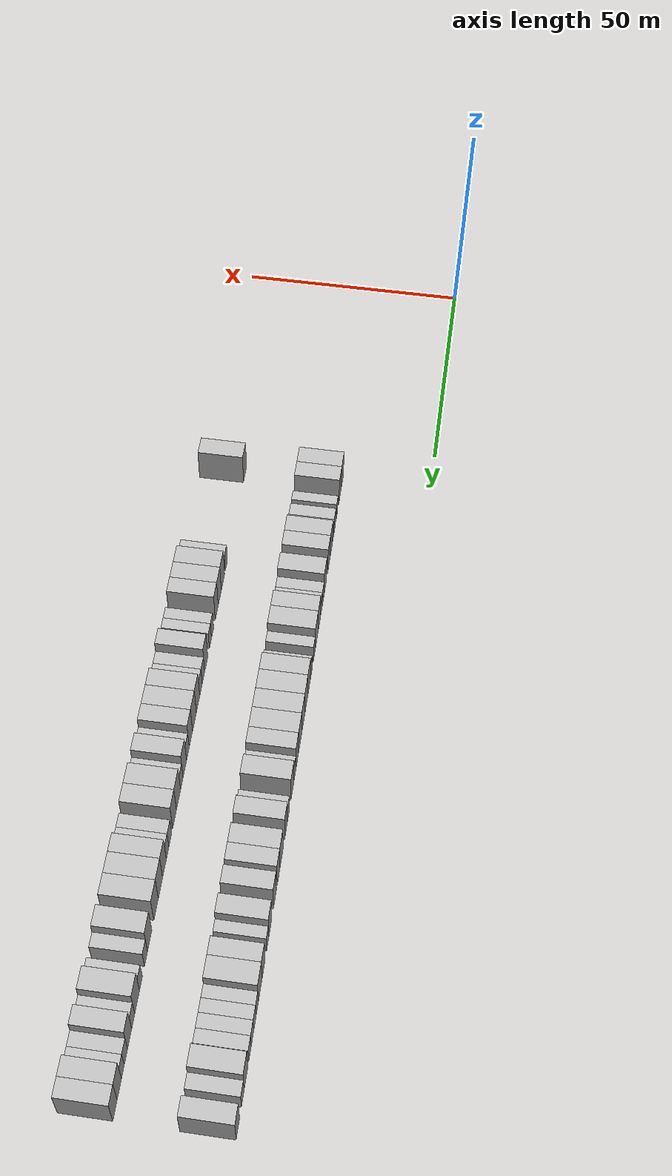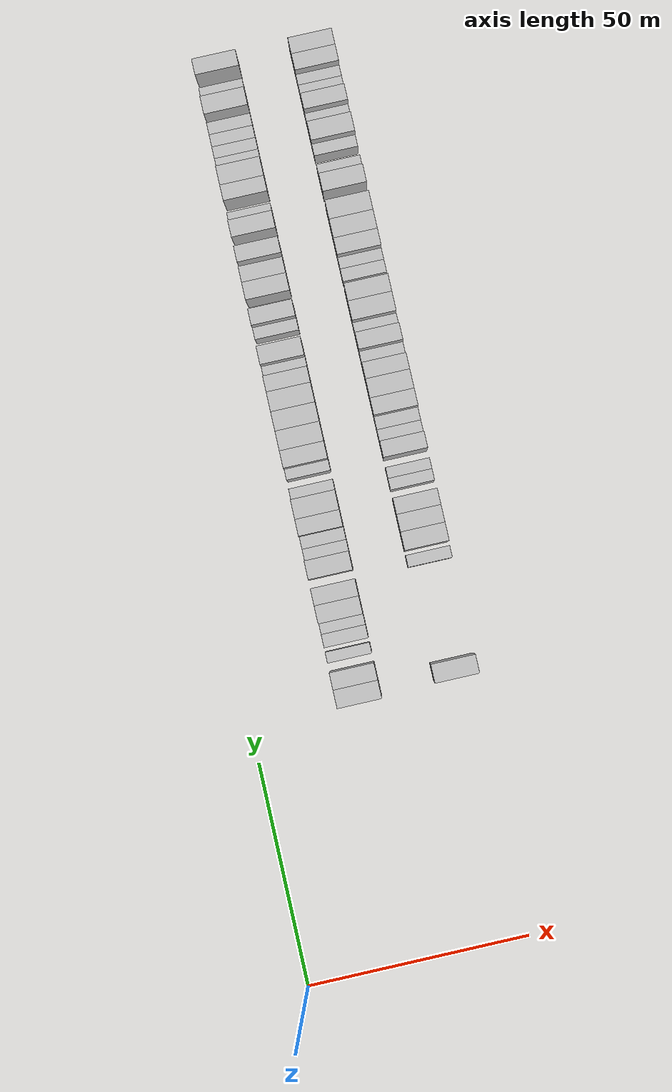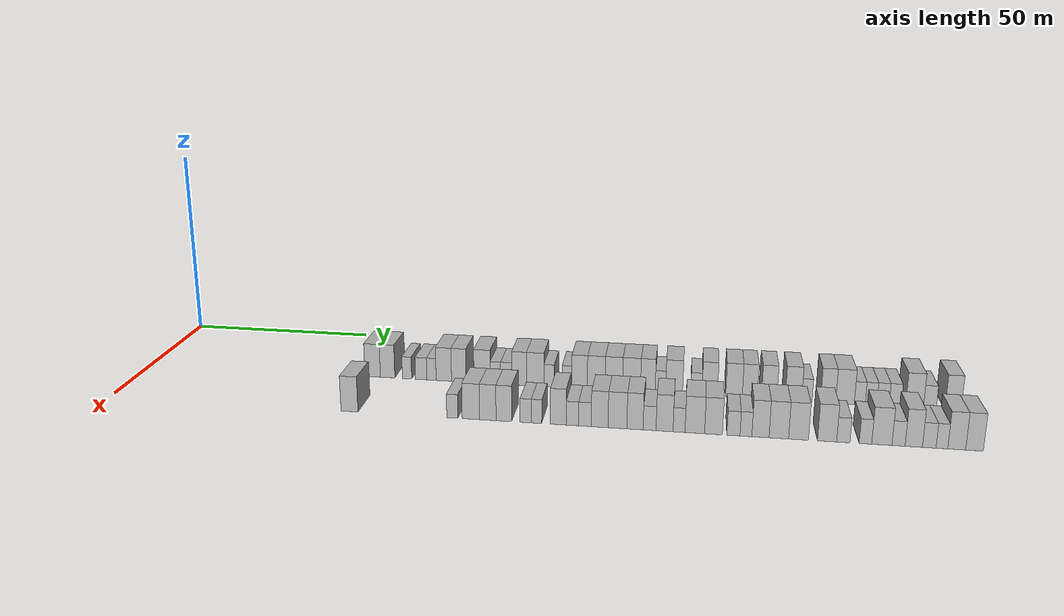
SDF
<sdf version="1.6">
 <world name="default">
  <model name="building_69">
   <static>1</static>
   <pose>25.0000 60.6281 0 0.000000 0.000000 0.000000</pose>
   <link name="link">
    <pose>0 0 4.50 0 0 0</pose>
    <collision name="collision"><geometry><box><size>10.0000 4.1049 9.0000</size></box></geometry></collision>
    <visual name="visual">
     <cast_shadows>0</cast_shadows>
     <geometry><box><size>10.0000 4.1049 9.0000</size></box></geometry>
     <material>
      <script>
       <uri>model://HANNAS_wall/materials/scripts</uri>
       <uri>model://HANNAS_wall/materials/textures</uri>
       <name>vrc/HANNAS_wall</name>
      </script>
     </material>
    </visual>
   </link>
  </model>
  <model name="building_70">
   <static>1</static>
   <pose>25.0000 64.6095 0 0.000000 0.000000 0.000000</pose>
   <link name="link">
    <pose>0 0 4.50 0 0 0</pose>
    <collision name="collision"><geometry><box><size>10.0000 3.8579 9.0000</size></box></geometry></collision>
    <visual name="visual">
     <cast_shadows>0</cast_shadows>
     <geometry><box><size>10.0000 3.8579 9.0000</size></box></geometry>
     <material>
      <script>
       <uri>model://HANNAS_wall/materials/scripts</uri>
       <uri>model://HANNAS_wall/materials/textures</uri>
       <name>vrc/HANNAS_wall</name>
      </script>
     </material>
    </visual>
   </link>
  </model>
  <model name="building_71">
   <static>1</static>
   <pose>25.0000 69.7680 0 0.000000 0.000000 0.000000</pose>
   <link name="link">
    <pose>0 0 3.00 0 0 0</pose>
    <collision name="collision"><geometry><box><size>10.0000 2.4591 6.0000</size></box></geometry></collision>
    <visual name="visual">
     <cast_shadows>0</cast_shadows>
     <geometry><box><size>10.0000 2.4591 6.0000</size></box></geometry>
     <material>
      <script>
       <uri>model://HANNAS_wall/materials/scripts</uri>
       <uri>model://HANNAS_wall/materials/textures</uri>
       <name>vrc/HANNAS_wall</name>
      </script>
     </material>
    </visual>
   </link>
  </model>
  <model name="building_72">
   <static>1</static>
   <pose>25.0000 73.4975 0 0.000000 0.000000 0.000000</pose>
   <link name="link">
    <pose>0 0 3.00 0 0 0</pose>
    <collision name="collision"><geometry><box><size>10.0000 2.9999 6.0000</size></box></geometry></collision>
    <visual name="visual">
     <cast_shadows>0</cast_shadows>
     <geometry><box><size>10.0000 2.9999 6.0000</size></box></geometry>
     <material>
      <script>
       <uri>model://HANNAS_wall/materials/scripts</uri>
       <uri>model://HANNAS_wall/materials/textures</uri>
       <name>vrc/HANNAS_wall</name>
      </script>
     </material>
    </visual>
   </link>
  </model>
  <model name="building_73">
   <static>1</static>
   <pose>25.0000 76.2064 0 0.000000 0.000000 0.000000</pose>
   <link name="link">
    <pose>0 0 3.00 0 0 0</pose>
    <collision name="collision"><geometry><box><size>10.0000 2.4179 6.0000</size></box></geometry></collision>
    <visual name="visual">
     <cast_shadows>0</cast_shadows>
     <geometry><box><size>10.0000 2.4179 6.0000</size></box></geometry>
     <material>
      <script>
       <uri>model://HANNAS_wall/materials/scripts</uri>
       <uri>model://HANNAS_wall/materials/textures</uri>
       <name>vrc/HANNAS_wall</name>
      </script>
     </material>
    </visual>
   </link>
  </model>
  <model name="building_74">
   <static>1</static>
   <pose>25.0000 79.4360 0 0.000000 0.000000 0.000000</pose>
   <link name="link">
    <pose>0 0 4.50 0 0 0</pose>
    <collision name="collision"><geometry><box><size>10.0000 4.0414 9.0000</size></box></geometry></collision>
    <visual name="visual">
     <cast_shadows>0</cast_shadows>
     <geometry><box><size>10.0000 4.0414 9.0000</size></box></geometry>
     <material>
      <script>
       <uri>model://HANNAS_wall/materials/scripts</uri>
       <uri>model://HANNAS_wall/materials/textures</uri>
       <name>vrc/HANNAS_wall</name>
      </script>
     </material>
    </visual>
   </link>
  </model>
  <model name="building_75">
   <static>1</static>
   <pose>25.0000 83.3747 0 0.000000 0.000000 0.000000</pose>
   <link name="link">
    <pose>0 0 4.50 0 0 0</pose>
    <collision name="collision"><geometry><box><size>10.0000 3.8359 9.0000</size></box></geometry></collision>
    <visual name="visual">
     <cast_shadows>0</cast_shadows>
     <geometry><box><size>10.0000 3.8359 9.0000</size></box></geometry>
     <material>
      <script>
       <uri>model://HANNAS_wall/materials/scripts</uri>
       <uri>model://HANNAS_wall/materials/textures</uri>
       <name>vrc/HANNAS_wall</name>
      </script>
     </material>
    </visual>
   </link>
  </model>
  <model name="building_76">
   <static>1</static>
   <pose>25.0000 89.4093 0 0.000000 0.000000 0.000000</pose>
   <link name="link">
    <pose>0 0 4.50 0 0 0</pose>
    <collision name="collision"><geometry><box><size>10.0000 4.2335 9.0000</size></box></geometry></collision>
    <visual name="visual">
     <cast_shadows>0</cast_shadows>
     <geometry><box><size>10.0000 4.2335 9.0000</size></box></geometry>
     <material>
      <script>
       <uri>model://HANNAS_wall/materials/scripts</uri>
       <uri>model://HANNAS_wall/materials/textures</uri>
       <name>vrc/HANNAS_wall</name>
      </script>
     </material>
    </visual>
   </link>
  </model>
  <model name="building_77">
   <static>1</static>
   <pose>25.0000 92.8717 0 0.000000 0.000000 0.000000</pose>
   <link name="link">
    <pose>0 0 3.00 0 0 0</pose>
    <collision name="collision"><geometry><box><size>10.0000 2.6913 6.0000</size></box></geometry></collision>
    <visual name="visual">
     <cast_shadows>0</cast_shadows>
     <geometry><box><size>10.0000 2.6913 6.0000</size></box></geometry>
     <material>
      <script>
       <uri>model://HANNAS_wall/materials/scripts</uri>
       <uri>model://HANNAS_wall/materials/textures</uri>
       <name>vrc/HANNAS_wall</name>
      </script>
     </material>
    </visual>
   </link>
  </model>
  <model name="building_78">
   <static>1</static>
   <pose>25.0000 95.6302 0 0.000000 0.000000 0.000000</pose>
   <link name="link">
    <pose>0 0 3.00 0 0 0</pose>
    <collision name="collision"><geometry><box><size>10.0000 2.8256 6.0000</size></box></geometry></collision>
    <visual name="visual">
     <cast_shadows>0</cast_shadows>
     <geometry><box><size>10.0000 2.8256 6.0000</size></box></geometry>
     <material>
      <script>
       <uri>model://HANNAS_wall/materials/scripts</uri>
       <uri>model://HANNAS_wall/materials/textures</uri>
       <name>vrc/HANNAS_wall</name>
      </script>
     </material>
    </visual>
   </link>
  </model>
  <model name="building_79">
   <static>1</static>
   <pose>25.0000 98.9322 0 0.000000 0.000000 0.000000</pose>
   <link name="link">
    <pose>0 0 4.50 0 0 0</pose>
    <collision name="collision"><geometry><box><size>10.0000 3.7783 9.0000</size></box></geometry></collision>
    <visual name="visual">
     <cast_shadows>0</cast_shadows>
     <geometry><box><size>10.0000 3.7783 9.0000</size></box></geometry>
     <material>
      <script>
       <uri>model://HANNAS_wall/materials/scripts</uri>
       <uri>model://HANNAS_wall/materials/textures</uri>
       <name>vrc/HANNAS_wall</name>
      </script>
     </material>
    </visual>
   </link>
  </model>
  <model name="building_80">
   <static>1</static>
   <pose>25.0000 103.0602 0 0.000000 0.000000 0.000000</pose>
   <link name="link">
    <pose>0 0 4.50 0 0 0</pose>
    <collision name="collision"><geometry><box><size>10.0000 4.4778 9.0000</size></box></geometry></collision>
    <visual name="visual">
     <cast_shadows>0</cast_shadows>
     <geometry><box><size>10.0000 4.4778 9.0000</size></box></geometry>
     <material>
      <script>
       <uri>model://HANNAS_wall/materials/scripts</uri>
       <uri>model://HANNAS_wall/materials/textures</uri>
       <name>vrc/HANNAS_wall</name>
      </script>
     </material>
    </visual>
   </link>
  </model>
  <model name="building_81">
   <static>1</static>
   <pose>25.0000 106.6030 0 0.000000 0.000000 0.000000</pose>
   <link name="link">
    <pose>0 0 3.00 0 0 0</pose>
    <collision name="collision"><geometry><box><size>10.0000 2.6079 6.0000</size></box></geometry></collision>
    <visual name="visual">
     <cast_shadows>0</cast_shadows>
     <geometry><box><size>10.0000 2.6079 6.0000</size></box></geometry>
     <material>
      <script>
       <uri>model://HANNAS_wall/materials/scripts</uri>
       <uri>model://HANNAS_wall/materials/textures</uri>
       <name>vrc/HANNAS_wall</name>
      </script>
     </material>
    </visual>
   </link>
  </model>
  <model name="building_82">
   <static>1</static>
   <pose>25.0000 111.1408 0 0.000000 0.000000 0.000000</pose>
   <link name="link">
    <pose>0 0 3.00 0 0 0</pose>
    <collision name="collision"><geometry><box><size>10.0000 2.4676 6.0000</size></box></geometry></collision>
    <visual name="visual">
     <cast_shadows>0</cast_shadows>
     <geometry><box><size>10.0000 2.4676 6.0000</size></box></geometry>
     <material>
      <script>
       <uri>model://HANNAS_wall/materials/scripts</uri>
       <uri>model://HANNAS_wall/materials/textures</uri>
       <name>vrc/HANNAS_wall</name>
      </script>
     </material>
    </visual>
   </link>
  </model>
  <model name="building_83">
   <static>1</static>
   <pose>25.0000 114.3430 0 0.000000 0.000000 0.000000</pose>
   <link name="link">
    <pose>0 0 4.50 0 0 0</pose>
    <collision name="collision"><geometry><box><size>10.0000 3.9369 9.0000</size></box></geometry></collision>
    <visual name="visual">
     <cast_shadows>0</cast_shadows>
     <geometry><box><size>10.0000 3.9369 9.0000</size></box></geometry>
     <material>
      <script>
       <uri>model://HANNAS_wall/materials/scripts</uri>
       <uri>model://HANNAS_wall/materials/textures</uri>
       <name>vrc/HANNAS_wall</name>
      </script>
     </material>
    </visual>
   </link>
  </model>
  <model name="building_84">
   <static>1</static>
   <pose>25.0000 118.5405 0 0.000000 0.000000 0.000000</pose>
   <link name="link">
    <pose>0 0 4.50 0 0 0</pose>
    <collision name="collision"><geometry><box><size>10.0000 4.4580 9.0000</size></box></geometry></collision>
    <visual name="visual">
     <cast_shadows>0</cast_shadows>
     <geometry><box><size>10.0000 4.4580 9.0000</size></box></geometry>
     <material>
      <script>
       <uri>model://HANNAS_wall/materials/scripts</uri>
       <uri>model://HANNAS_wall/materials/textures</uri>
       <name>vrc/HANNAS_wall</name>
      </script>
     </material>
    </visual>
   </link>
  </model>
  <model name="building_85">
   <static>1</static>
   <pose>25.0000 122.9615 0 0.000000 0.000000 0.000000</pose>
   <link name="link">
    <pose>0 0 4.50 0 0 0</pose>
    <collision name="collision"><geometry><box><size>10.0000 4.3841 9.0000</size></box></geometry></collision>
    <visual name="visual">
     <cast_shadows>0</cast_shadows>
     <geometry><box><size>10.0000 4.3841 9.0000</size></box></geometry>
     <material>
      <script>
       <uri>model://HANNAS_wall/materials/scripts</uri>
       <uri>model://HANNAS_wall/materials/textures</uri>
       <name>vrc/HANNAS_wall</name>
      </script>
     </material>
    </visual>
   </link>
  </model>
  <model name="building_86">
   <static>1</static>
   <pose>25.0000 127.3989 0 0.000000 0.000000 0.000000</pose>
   <link name="link">
    <pose>0 0 4.50 0 0 0</pose>
    <collision name="collision"><geometry><box><size>10.0000 4.4908 9.0000</size></box></geometry></collision>
    <visual name="visual">
     <cast_shadows>0</cast_shadows>
     <geometry><box><size>10.0000 4.4908 9.0000</size></box></geometry>
     <material>
      <script>
       <uri>model://HANNAS_wall/materials/scripts</uri>
       <uri>model://HANNAS_wall/materials/textures</uri>
       <name>vrc/HANNAS_wall</name>
      </script>
     </material>
    </visual>
   </link>
  </model>
  <model name="building_87">
   <static>1</static>
   <pose>25.0000 131.4726 0 0.000000 0.000000 0.000000</pose>
   <link name="link">
    <pose>0 0 4.50 0 0 0</pose>
    <collision name="collision"><geometry><box><size>10.0000 3.6566 9.0000</size></box></geometry></collision>
    <visual name="visual">
     <cast_shadows>0</cast_shadows>
     <geometry><box><size>10.0000 3.6566 9.0000</size></box></geometry>
     <material>
      <script>
       <uri>model://HANNAS_wall/materials/scripts</uri>
       <uri>model://HANNAS_wall/materials/textures</uri>
       <name>vrc/HANNAS_wall</name>
      </script>
     </material>
    </visual>
   </link>
  </model>
  <model name="building_88">
   <static>1</static>
   <pose>25.0000 134.5861 0 0.000000 0.000000 0.000000</pose>
   <link name="link">
    <pose>0 0 3.00 0 0 0</pose>
    <collision name="collision"><geometry><box><size>10.0000 2.5705 6.0000</size></box></geometry></collision>
    <visual name="visual">
     <cast_shadows>0</cast_shadows>
     <geometry><box><size>10.0000 2.5705 6.0000</size></box></geometry>
     <material>
      <script>
       <uri>model://HANNAS_wall/materials/scripts</uri>
       <uri>model://HANNAS_wall/materials/textures</uri>
       <name>vrc/HANNAS_wall</name>
      </script>
     </material>
    </visual>
   </link>
  </model>
  <model name="building_89">
   <static>1</static>
   <pose>25.0000 137.9731 0 0.000000 0.000000 0.000000</pose>
   <link name="link">
    <pose>0 0 4.50 0 0 0</pose>
    <collision name="collision"><geometry><box><size>10.0000 4.2035 9.0000</size></box></geometry></collision>
    <visual name="visual">
     <cast_shadows>0</cast_shadows>
     <geometry><box><size>10.0000 4.2035 9.0000</size></box></geometry>
     <material>
      <script>
       <uri>model://HANNAS_wall/materials/scripts</uri>
       <uri>model://HANNAS_wall/materials/textures</uri>
       <name>vrc/HANNAS_wall</name>
      </script>
     </material>
    </visual>
   </link>
  </model>
  <model name="building_90">
   <static>1</static>
   <pose>25.0000 143.4472 0 0.000000 0.000000 0.000000</pose>
   <link name="link">
    <pose>0 0 3.00 0 0 0</pose>
    <collision name="collision"><geometry><box><size>10.0000 2.7448 6.0000</size></box></geometry></collision>
    <visual name="visual">
     <cast_shadows>0</cast_shadows>
     <geometry><box><size>10.0000 2.7448 6.0000</size></box></geometry>
     <material>
      <script>
       <uri>model://HANNAS_wall/materials/scripts</uri>
       <uri>model://HANNAS_wall/materials/textures</uri>
       <name>vrc/HANNAS_wall</name>
      </script>
     </material>
    </visual>
   </link>
  </model>
  <model name="building_91">
   <static>1</static>
   <pose>25.0000 146.7209 0 0.000000 0.000000 0.000000</pose>
   <link name="link">
    <pose>0 0 4.50 0 0 0</pose>
    <collision name="collision"><geometry><box><size>10.0000 3.8027 9.0000</size></box></geometry></collision>
    <visual name="visual">
     <cast_shadows>0</cast_shadows>
     <geometry><box><size>10.0000 3.8027 9.0000</size></box></geometry>
     <material>
      <script>
       <uri>model://HANNAS_wall/materials/scripts</uri>
       <uri>model://HANNAS_wall/materials/textures</uri>
       <name>vrc/HANNAS_wall</name>
      </script>
     </material>
    </visual>
   </link>
  </model>
  <model name="building_92">
   <static>1</static>
   <pose>25.0000 152.6451 0 0.000000 0.000000 0.000000</pose>
   <link name="link">
    <pose>0 0 4.50 0 0 0</pose>
    <collision name="collision"><geometry><box><size>10.0000 4.0456 9.0000</size></box></geometry></collision>
    <visual name="visual">
     <cast_shadows>0</cast_shadows>
     <geometry><box><size>10.0000 4.0456 9.0000</size></box></geometry>
     <material>
      <script>
       <uri>model://HANNAS_wall/materials/scripts</uri>
       <uri>model://HANNAS_wall/materials/textures</uri>
       <name>vrc/HANNAS_wall</name>
      </script>
     </material>
    </visual>
   </link>
  </model>
  <model name="building_93">
   <static>1</static>
   <pose>25.0000 156.4849 0 0.000000 0.000000 0.000000</pose>
   <link name="link">
    <pose>0 0 4.50 0 0 0</pose>
    <collision name="collision"><geometry><box><size>10.0000 3.6340 9.0000</size></box></geometry></collision>
    <visual name="visual">
     <cast_shadows>0</cast_shadows>
     <geometry><box><size>10.0000 3.6340 9.0000</size></box></geometry>
     <material>
      <script>
       <uri>model://HANNAS_wall/materials/scripts</uri>
       <uri>model://HANNAS_wall/materials/textures</uri>
       <name>vrc/HANNAS_wall</name>
      </script>
     </material>
    </visual>
   </link>
  </model>
  <model name="building_94">
   <static>1</static>
   <pose>25.0000 161.1695 0 0.000000 0.000000 0.000000</pose>
   <link name="link">
    <pose>0 0 4.50 0 0 0</pose>
    <collision name="collision"><geometry><box><size>10.0000 3.7351 9.0000</size></box></geometry></collision>
    <visual name="visual">
     <cast_shadows>0</cast_shadows>
     <geometry><box><size>10.0000 3.7351 9.0000</size></box></geometry>
     <material>
      <script>
       <uri>model://HANNAS_wall/materials/scripts</uri>
       <uri>model://HANNAS_wall/materials/textures</uri>
       <name>vrc/HANNAS_wall</name>
      </script>
     </material>
    </visual>
   </link>
  </model>
  <model name="building_95">
   <static>1</static>
   <pose>25.0000 167.0073 0 0.000000 0.000000 0.000000</pose>
   <link name="link">
    <pose>0 0 4.50 0 0 0</pose>
    <collision name="collision"><geometry><box><size>10.0000 3.9406 9.0000</size></box></geometry></collision>
    <visual name="visual">
     <cast_shadows>0</cast_shadows>
     <geometry><box><size>10.0000 3.9406 9.0000</size></box></geometry>
     <material>
      <script>
       <uri>model://HANNAS_wall/materials/scripts</uri>
       <uri>model://HANNAS_wall/materials/textures</uri>
       <name>vrc/HANNAS_wall</name>
      </script>
     </material>
    </visual>
   </link>
  </model>
  <model name="building_96">
   <static>1</static>
   <pose>25.0000 170.2201 0 0.000000 0.000000 0.000000</pose>
   <link name="link">
    <pose>0 0 3.00 0 0 0</pose>
    <collision name="collision"><geometry><box><size>10.0000 2.4851 6.0000</size></box></geometry></collision>
    <visual name="visual">
     <cast_shadows>0</cast_shadows>
     <geometry><box><size>10.0000 2.4851 6.0000</size></box></geometry>
     <material>
      <script>
       <uri>model://HANNAS_wall/materials/scripts</uri>
       <uri>model://HANNAS_wall/materials/textures</uri>
       <name>vrc/HANNAS_wall</name>
      </script>
     </material>
    </visual>
   </link>
  </model>
  <model name="building_97">
   <static>1</static>
   <pose>25.0000 175.2666 0 0.000000 0.000000 0.000000</pose>
   <link name="link">
    <pose>0 0 4.50 0 0 0</pose>
    <collision name="collision"><geometry><box><size>10.0000 3.6079 9.0000</size></box></geometry></collision>
    <visual name="visual">
     <cast_shadows>0</cast_shadows>
     <geometry><box><size>10.0000 3.6079 9.0000</size></box></geometry>
     <material>
      <script>
       <uri>model://HANNAS_wall/materials/scripts</uri>
       <uri>model://HANNAS_wall/materials/textures</uri>
       <name>vrc/HANNAS_wall</name>
      </script>
     </material>
    </visual>
   </link>
  </model>
  <model name="building_98">
   <static>1</static>
   <pose>25.0000 179.2738 0 0.000000 0.000000 0.000000</pose>
   <link name="link">
    <pose>0 0 4.50 0 0 0</pose>
    <collision name="collision"><geometry><box><size>10.0000 4.4064 9.0000</size></box></geometry></collision>
    <visual name="visual">
     <cast_shadows>0</cast_shadows>
     <geometry><box><size>10.0000 4.4064 9.0000</size></box></geometry>
     <material>
      <script>
       <uri>model://HANNAS_wall/materials/scripts</uri>
       <uri>model://HANNAS_wall/materials/textures</uri>
       <name>vrc/HANNAS_wall</name>
      </script>
     </material>
    </visual>
   </link>
  </model>
  <model name="building_99">
   <static>1</static>
   <pose>25.0000 182.7730 0 0.000000 0.000000 0.000000</pose>
   <link name="link">
    <pose>0 0 3.00 0 0 0</pose>
    <collision name="collision"><geometry><box><size>10.0000 2.5921 6.0000</size></box></geometry></collision>
    <visual name="visual">
     <cast_shadows>0</cast_shadows>
     <geometry><box><size>10.0000 2.5921 6.0000</size></box></geometry>
     <material>
      <script>
       <uri>model://HANNAS_wall/materials/scripts</uri>
       <uri>model://HANNAS_wall/materials/textures</uri>
       <name>vrc/HANNAS_wall</name>
      </script>
     </material>
    </visual>
   </link>
  </model>
  <model name="building_100">
   <static>1</static>
   <pose>25.0000 185.4333 0 0.000000 0.000000 0.000000</pose>
   <link name="link">
    <pose>0 0 3.00 0 0 0</pose>
    <collision name="collision"><geometry><box><size>10.0000 2.7285 6.0000</size></box></geometry></collision>
    <visual name="visual">
     <cast_shadows>0</cast_shadows>
     <geometry><box><size>10.0000 2.7285 6.0000</size></box></geometry>
     <material>
      <script>
       <uri>model://HANNAS_wall/materials/scripts</uri>
       <uri>model://HANNAS_wall/materials/textures</uri>
       <name>vrc/HANNAS_wall</name>
      </script>
     </material>
    </visual>
   </link>
  </model>
  <model name="building_101">
   <static>1</static>
   <pose>25.0000 188.2300 0 0.000000 0.000000 0.000000</pose>
   <link name="link">
    <pose>0 0 3.00 0 0 0</pose>
    <collision name="collision"><geometry><box><size>10.0000 2.8648 6.0000</size></box></geometry></collision>
    <visual name="visual">
     <cast_shadows>0</cast_shadows>
     <geometry><box><size>10.0000 2.8648 6.0000</size></box></geometry>
     <material>
      <script>
       <uri>model://HANNAS_wall/materials/scripts</uri>
       <uri>model://HANNAS_wall/materials/textures</uri>
       <name>vrc/HANNAS_wall</name>
      </script>
     </material>
    </visual>
   </link>
  </model>
  <model name="building_102">
   <static>1</static>
   <pose>25.0000 191.0706 0 0.000000 0.000000 0.000000</pose>
   <link name="link">
    <pose>0 0 3.00 0 0 0</pose>
    <collision name="collision"><geometry><box><size>10.0000 2.8163 6.0000</size></box></geometry></collision>
    <visual name="visual">
     <cast_shadows>0</cast_shadows>
     <geometry><box><size>10.0000 2.8163 6.0000</size></box></geometry>
     <material>
      <script>
       <uri>model://HANNAS_wall/materials/scripts</uri>
       <uri>model://HANNAS_wall/materials/textures</uri>
       <name>vrc/HANNAS_wall</name>
      </script>
     </material>
    </visual>
   </link>
  </model>
  <model name="building_103">
   <static>1</static>
   <pose>25.0000 195.5640 0 0.000000 0.000000 0.000000</pose>
   <link name="link">
    <pose>0 0 4.50 0 0 0</pose>
    <collision name="collision"><geometry><box><size>10.0000 4.1705 9.0000</size></box></geometry></collision>
    <visual name="visual">
     <cast_shadows>0</cast_shadows>
     <geometry><box><size>10.0000 4.1705 9.0000</size></box></geometry>
     <material>
      <script>
       <uri>model://HANNAS_wall/materials/scripts</uri>
       <uri>model://HANNAS_wall/materials/textures</uri>
       <name>vrc/HANNAS_wall</name>
      </script>
     </material>
    </visual>
   </link>
  </model>
  <model name="building_104">
   <static>1</static>
   <pose>25.0000 199.1407 0 0.000000 0.000000 0.000000</pose>
   <link name="link">
    <pose>0 0 3.00 0 0 0</pose>
    <collision name="collision"><geometry><box><size>10.0000 2.9829 6.0000</size></box></geometry></collision>
    <visual name="visual">
     <cast_shadows>0</cast_shadows>
     <geometry><box><size>10.0000 2.9829 6.0000</size></box></geometry>
     <material>
      <script>
       <uri>model://HANNAS_wall/materials/scripts</uri>
       <uri>model://HANNAS_wall/materials/textures</uri>
       <name>vrc/HANNAS_wall</name>
      </script>
     </material>
    </visual>
   </link>
  </model>
  <model name="building_105">
   <static>1</static>
   <pose>25.0000 204.4882 0 0.000000 0.000000 0.000000</pose>
   <link name="link">
    <pose>0 0 4.50 0 0 0</pose>
    <collision name="collision"><geometry><box><size>10.0000 3.7121 9.0000</size></box></geometry></collision>
    <visual name="visual">
     <cast_shadows>0</cast_shadows>
     <geometry><box><size>10.0000 3.7121 9.0000</size></box></geometry>
     <material>
      <script>
       <uri>model://HANNAS_wall/materials/scripts</uri>
       <uri>model://HANNAS_wall/materials/textures</uri>
       <name>vrc/HANNAS_wall</name>
      </script>
     </material>
    </visual>
   </link>
  </model>
  <model name="building_177">
   <static>1</static>
   <pose>47.0000 61.3142 0 0.000000 0.000000 0.000000</pose>
   <link name="link">
    <pose>0 0 4.50 0 0 0</pose>
    <collision name="collision"><geometry><box><size>10.0000 4.2112 9.0000</size></box></geometry></collision>
    <visual name="visual">
     <cast_shadows>0</cast_shadows>
     <geometry><box><size>10.0000 4.2112 9.0000</size></box></geometry>
     <material>
      <script>
       <uri>model://HANNAS_wall/materials/scripts</uri>
       <uri>model://HANNAS_wall/materials/textures</uri>
       <name>vrc/HANNAS_wall</name>
      </script>
     </material>
    </visual>
   </link>
  </model>
  <model name="building_178">
   <static>1</static>
   <pose>47.0000 86.4812 0 0.000000 0.000000 0.000000</pose>
   <link name="link">
    <pose>0 0 3.00 0 0 0</pose>
    <collision name="collision"><geometry><box><size>10.0000 2.7076 6.0000</size></box></geometry></collision>
    <visual name="visual">
     <cast_shadows>0</cast_shadows>
     <geometry><box><size>10.0000 2.7076 6.0000</size></box></geometry>
     <material>
      <script>
       <uri>model://HANNAS_wall/materials/scripts</uri>
       <uri>model://HANNAS_wall/materials/textures</uri>
       <name>vrc/HANNAS_wall</name>
      </script>
     </material>
    </visual>
   </link>
  </model>
  <model name="building_179">
   <static>1</static>
   <pose>47.0000 90.9235 0 0.000000 0.000000 0.000000</pose>
   <link name="link">
    <pose>0 0 4.50 0 0 0</pose>
    <collision name="collision"><geometry><box><size>10.0000 4.1772 9.0000</size></box></geometry></collision>
    <visual name="visual">
     <cast_shadows>0</cast_shadows>
     <geometry><box><size>10.0000 4.1772 9.0000</size></box></geometry>
     <material>
      <script>
       <uri>model://HANNAS_wall/materials/scripts</uri>
       <uri>model://HANNAS_wall/materials/textures</uri>
       <name>vrc/HANNAS_wall</name>
      </script>
     </material>
    </visual>
   </link>
  </model>
  <model name="building_180">
   <static>1</static>
   <pose>47.0000 94.9834 0 0.000000 0.000000 0.000000</pose>
   <link name="link">
    <pose>0 0 4.50 0 0 0</pose>
    <collision name="collision"><geometry><box><size>10.0000 3.9427 9.0000</size></box></geometry></collision>
    <visual name="visual">
     <cast_shadows>0</cast_shadows>
     <geometry><box><size>10.0000 3.9427 9.0000</size></box></geometry>
     <material>
      <script>
       <uri>model://HANNAS_wall/materials/scripts</uri>
       <uri>model://HANNAS_wall/materials/textures</uri>
       <name>vrc/HANNAS_wall</name>
      </script>
     </material>
    </visual>
   </link>
  </model>
  <model name="building_181">
   <static>1</static>
   <pose>47.0000 98.8069 0 0.000000 0.000000 0.000000</pose>
   <link name="link">
    <pose>0 0 4.50 0 0 0</pose>
    <collision name="collision"><geometry><box><size>10.0000 3.7043 9.0000</size></box></geometry></collision>
    <visual name="visual">
     <cast_shadows>0</cast_shadows>
     <geometry><box><size>10.0000 3.7043 9.0000</size></box></geometry>
     <material>
      <script>
       <uri>model://HANNAS_wall/materials/scripts</uri>
       <uri>model://HANNAS_wall/materials/textures</uri>
       <name>vrc/HANNAS_wall</name>
      </script>
     </material>
    </visual>
   </link>
  </model>
  <model name="building_182">
   <static>1</static>
   <pose>47.0000 103.9789 0 0.000000 0.000000 0.000000</pose>
   <link name="link">
    <pose>0 0 3.00 0 0 0</pose>
    <collision name="collision"><geometry><box><size>10.0000 2.6396 6.0000</size></box></geometry></collision>
    <visual name="visual">
     <cast_shadows>0</cast_shadows>
     <geometry><box><size>10.0000 2.6396 6.0000</size></box></geometry>
     <material>
      <script>
       <uri>model://HANNAS_wall/materials/scripts</uri>
       <uri>model://HANNAS_wall/materials/textures</uri>
       <name>vrc/HANNAS_wall</name>
      </script>
     </material>
    </visual>
   </link>
  </model>
  <model name="building_183">
   <static>1</static>
   <pose>47.0000 106.5513 0 0.000000 0.000000 0.000000</pose>
   <link name="link">
    <pose>0 0 3.00 0 0 0</pose>
    <collision name="collision"><geometry><box><size>10.0000 2.5052 6.0000</size></box></geometry></collision>
    <visual name="visual">
     <cast_shadows>0</cast_shadows>
     <geometry><box><size>10.0000 2.5052 6.0000</size></box></geometry>
     <material>
      <script>
       <uri>model://HANNAS_wall/materials/scripts</uri>
       <uri>model://HANNAS_wall/materials/textures</uri>
       <name>vrc/HANNAS_wall</name>
      </script>
     </material>
    </visual>
   </link>
  </model>
  <model name="building_184">
   <static>1</static>
   <pose>47.0000 111.6657 0 0.000000 0.000000 0.000000</pose>
   <link name="link">
    <pose>0 0 4.50 0 0 0</pose>
    <collision name="collision"><geometry><box><size>10.0000 3.7236 9.0000</size></box></geometry></collision>
    <visual name="visual">
     <cast_shadows>0</cast_shadows>
     <geometry><box><size>10.0000 3.7236 9.0000</size></box></geometry>
     <material>
      <script>
       <uri>model://HANNAS_wall/materials/scripts</uri>
       <uri>model://HANNAS_wall/materials/textures</uri>
       <name>vrc/HANNAS_wall</name>
      </script>
     </material>
    </visual>
   </link>
  </model>
  <model name="building_185">
   <static>1</static>
   <pose>47.0000 114.9691 0 0.000000 0.000000 0.000000</pose>
   <link name="link">
    <pose>0 0 3.00 0 0 0</pose>
    <collision name="collision"><geometry><box><size>10.0000 2.8833 6.0000</size></box></geometry></collision>
    <visual name="visual">
     <cast_shadows>0</cast_shadows>
     <geometry><box><size>10.0000 2.8833 6.0000</size></box></geometry>
     <material>
      <script>
       <uri>model://HANNAS_wall/materials/scripts</uri>
       <uri>model://HANNAS_wall/materials/textures</uri>
       <name>vrc/HANNAS_wall</name>
      </script>
     </material>
    </visual>
   </link>
  </model>
  <model name="building_186">
   <static>1</static>
   <pose>47.0000 117.8947 0 0.000000 0.000000 0.000000</pose>
   <link name="link">
    <pose>0 0 3.00 0 0 0</pose>
    <collision name="collision"><geometry><box><size>10.0000 2.9679 6.0000</size></box></geometry></collision>
    <visual name="visual">
     <cast_shadows>0</cast_shadows>
     <geometry><box><size>10.0000 2.9679 6.0000</size></box></geometry>
     <material>
      <script>
       <uri>model://HANNAS_wall/materials/scripts</uri>
       <uri>model://HANNAS_wall/materials/textures</uri>
       <name>vrc/HANNAS_wall</name>
      </script>
     </material>
    </visual>
   </link>
  </model>
  <model name="building_187">
   <static>1</static>
   <pose>47.0000 121.3328 0 0.000000 0.000000 0.000000</pose>
   <link name="link">
    <pose>0 0 4.50 0 0 0</pose>
    <collision name="collision"><geometry><box><size>10.0000 3.9082 9.0000</size></box></geometry></collision>
    <visual name="visual">
     <cast_shadows>0</cast_shadows>
     <geometry><box><size>10.0000 3.9082 9.0000</size></box></geometry>
     <material>
      <script>
       <uri>model://HANNAS_wall/materials/scripts</uri>
       <uri>model://HANNAS_wall/materials/textures</uri>
       <name>vrc/HANNAS_wall</name>
      </script>
     </material>
    </visual>
   </link>
  </model>
  <model name="building_188">
   <static>1</static>
   <pose>47.0000 125.4684 0 0.000000 0.000000 0.000000</pose>
   <link name="link">
    <pose>0 0 4.50 0 0 0</pose>
    <collision name="collision"><geometry><box><size>10.0000 4.3631 9.0000</size></box></geometry></collision>
    <visual name="visual">
     <cast_shadows>0</cast_shadows>
     <geometry><box><size>10.0000 4.3631 9.0000</size></box></geometry>
     <material>
      <script>
       <uri>model://HANNAS_wall/materials/scripts</uri>
       <uri>model://HANNAS_wall/materials/textures</uri>
       <name>vrc/HANNAS_wall</name>
      </script>
     </material>
    </visual>
   </link>
  </model>
  <model name="building_189">
   <static>1</static>
   <pose>47.0000 129.5197 0 0.000000 0.000000 0.000000</pose>
   <link name="link">
    <pose>0 0 4.50 0 0 0</pose>
    <collision name="collision"><geometry><box><size>10.0000 3.7394 9.0000</size></box></geometry></collision>
    <visual name="visual">
     <cast_shadows>0</cast_shadows>
     <geometry><box><size>10.0000 3.7394 9.0000</size></box></geometry>
     <material>
      <script>
       <uri>model://HANNAS_wall/materials/scripts</uri>
       <uri>model://HANNAS_wall/materials/textures</uri>
       <name>vrc/HANNAS_wall</name>
      </script>
     </material>
    </visual>
   </link>
  </model>
  <model name="building_190">
   <static>1</static>
   <pose>47.0000 132.8736 0 0.000000 0.000000 0.000000</pose>
   <link name="link">
    <pose>0 0 3.00 0 0 0</pose>
    <collision name="collision"><geometry><box><size>10.0000 2.9685 6.0000</size></box></geometry></collision>
    <visual name="visual">
     <cast_shadows>0</cast_shadows>
     <geometry><box><size>10.0000 2.9685 6.0000</size></box></geometry>
     <material>
      <script>
       <uri>model://HANNAS_wall/materials/scripts</uri>
       <uri>model://HANNAS_wall/materials/textures</uri>
       <name>vrc/HANNAS_wall</name>
      </script>
     </material>
    </visual>
   </link>
  </model>
  <model name="building_191">
   <static>1</static>
   <pose>47.0000 136.3010 0 0.000000 0.000000 0.000000</pose>
   <link name="link">
    <pose>0 0 4.50 0 0 0</pose>
    <collision name="collision"><geometry><box><size>10.0000 3.8862 9.0000</size></box></geometry></collision>
    <visual name="visual">
     <cast_shadows>0</cast_shadows>
     <geometry><box><size>10.0000 3.8862 9.0000</size></box></geometry>
     <material>
      <script>
       <uri>model://HANNAS_wall/materials/scripts</uri>
       <uri>model://HANNAS_wall/materials/textures</uri>
       <name>vrc/HANNAS_wall</name>
      </script>
     </material>
    </visual>
   </link>
  </model>
  <model name="building_192">
   <static>1</static>
   <pose>47.0000 139.6095 0 0.000000 0.000000 0.000000</pose>
   <link name="link">
    <pose>0 0 3.00 0 0 0</pose>
    <collision name="collision"><geometry><box><size>10.0000 2.7309 6.0000</size></box></geometry></collision>
    <visual name="visual">
     <cast_shadows>0</cast_shadows>
     <geometry><box><size>10.0000 2.7309 6.0000</size></box></geometry>
     <material>
      <script>
       <uri>model://HANNAS_wall/materials/scripts</uri>
       <uri>model://HANNAS_wall/materials/textures</uri>
       <name>vrc/HANNAS_wall</name>
      </script>
     </material>
    </visual>
   </link>
  </model>
  <model name="building_193">
   <static>1</static>
   <pose>47.0000 143.1960 0 0.000000 0.000000 0.000000</pose>
   <link name="link">
    <pose>0 0 4.50 0 0 0</pose>
    <collision name="collision"><geometry><box><size>10.0000 4.4422 9.0000</size></box></geometry></collision>
    <visual name="visual">
     <cast_shadows>0</cast_shadows>
     <geometry><box><size>10.0000 4.4422 9.0000</size></box></geometry>
     <material>
      <script>
       <uri>model://HANNAS_wall/materials/scripts</uri>
       <uri>model://HANNAS_wall/materials/textures</uri>
       <name>vrc/HANNAS_wall</name>
      </script>
     </material>
    </visual>
   </link>
  </model>
  <model name="building_194">
   <static>1</static>
   <pose>47.0000 147.4313 0 0.000000 0.000000 0.000000</pose>
   <link name="link">
    <pose>0 0 4.50 0 0 0</pose>
    <collision name="collision"><geometry><box><size>10.0000 4.0283 9.0000</size></box></geometry></collision>
    <visual name="visual">
     <cast_shadows>0</cast_shadows>
     <geometry><box><size>10.0000 4.0283 9.0000</size></box></geometry>
     <material>
      <script>
       <uri>model://HANNAS_wall/materials/scripts</uri>
       <uri>model://HANNAS_wall/materials/textures</uri>
       <name>vrc/HANNAS_wall</name>
      </script>
     </material>
    </visual>
   </link>
  </model>
  <model name="building_195">
   <static>1</static>
   <pose>47.0000 151.9194 0 0.000000 0.000000 0.000000</pose>
   <link name="link">
    <pose>0 0 3.00 0 0 0</pose>
    <collision name="collision"><geometry><box><size>10.0000 2.9479 6.0000</size></box></geometry></collision>
    <visual name="visual">
     <cast_shadows>0</cast_shadows>
     <geometry><box><size>10.0000 2.9479 6.0000</size></box></geometry>
     <material>
      <script>
       <uri>model://HANNAS_wall/materials/scripts</uri>
       <uri>model://HANNAS_wall/materials/textures</uri>
       <name>vrc/HANNAS_wall</name>
      </script>
     </material>
    </visual>
   </link>
  </model>
  <model name="building_196">
   <static>1</static>
   <pose>47.0000 154.7190 0 0.000000 0.000000 0.000000</pose>
   <link name="link">
    <pose>0 0 3.00 0 0 0</pose>
    <collision name="collision"><geometry><box><size>10.0000 2.6513 6.0000</size></box></geometry></collision>
    <visual name="visual">
     <cast_shadows>0</cast_shadows>
     <geometry><box><size>10.0000 2.6513 6.0000</size></box></geometry>
     <material>
      <script>
       <uri>model://HANNAS_wall/materials/scripts</uri>
       <uri>model://HANNAS_wall/materials/textures</uri>
       <name>vrc/HANNAS_wall</name>
      </script>
     </material>
    </visual>
   </link>
  </model>
  <model name="building_197">
   <static>1</static>
   <pose>47.0000 157.9601 0 0.000000 0.000000 0.000000</pose>
   <link name="link">
    <pose>0 0 4.50 0 0 0</pose>
    <collision name="collision"><geometry><box><size>10.0000 3.8310 9.0000</size></box></geometry></collision>
    <visual name="visual">
     <cast_shadows>0</cast_shadows>
     <geometry><box><size>10.0000 3.8310 9.0000</size></box></geometry>
     <material>
      <script>
       <uri>model://HANNAS_wall/materials/scripts</uri>
       <uri>model://HANNAS_wall/materials/textures</uri>
       <name>vrc/HANNAS_wall</name>
      </script>
     </material>
    </visual>
   </link>
  </model>
  <model name="building_198">
   <static>1</static>
   <pose>47.0000 162.0458 0 0.000000 0.000000 0.000000</pose>
   <link name="link">
    <pose>0 0 4.50 0 0 0</pose>
    <collision name="collision"><geometry><box><size>10.0000 4.3403 9.0000</size></box></geometry></collision>
    <visual name="visual">
     <cast_shadows>0</cast_shadows>
     <geometry><box><size>10.0000 4.3403 9.0000</size></box></geometry>
     <material>
      <script>
       <uri>model://HANNAS_wall/materials/scripts</uri>
       <uri>model://HANNAS_wall/materials/textures</uri>
       <name>vrc/HANNAS_wall</name>
      </script>
     </material>
    </visual>
   </link>
  </model>
  <model name="building_199">
   <static>1</static>
   <pose>47.0000 166.4095 0 0.000000 0.000000 0.000000</pose>
   <link name="link">
    <pose>0 0 4.50 0 0 0</pose>
    <collision name="collision"><geometry><box><size>10.0000 4.3872 9.0000</size></box></geometry></collision>
    <visual name="visual">
     <cast_shadows>0</cast_shadows>
     <geometry><box><size>10.0000 4.3872 9.0000</size></box></geometry>
     <material>
      <script>
       <uri>model://HANNAS_wall/materials/scripts</uri>
       <uri>model://HANNAS_wall/materials/textures</uri>
       <name>vrc/HANNAS_wall</name>
      </script>
     </material>
    </visual>
   </link>
  </model>
  <model name="building_200">
   <static>1</static>
   <pose>47.0000 172.7004 0 0.000000 0.000000 0.000000</pose>
   <link name="link">
    <pose>0 0 4.50 0 0 0</pose>
    <collision name="collision"><geometry><box><size>10.0000 4.1946 9.0000</size></box></geometry></collision>
    <visual name="visual">
     <cast_shadows>0</cast_shadows>
     <geometry><box><size>10.0000 4.1946 9.0000</size></box></geometry>
     <material>
      <script>
       <uri>model://HANNAS_wall/materials/scripts</uri>
       <uri>model://HANNAS_wall/materials/textures</uri>
       <name>vrc/HANNAS_wall</name>
      </script>
     </material>
    </visual>
   </link>
  </model>
  <model name="building_201">
   <static>1</static>
   <pose>47.0000 176.2566 0 0.000000 0.000000 0.000000</pose>
   <link name="link">
    <pose>0 0 3.00 0 0 0</pose>
    <collision name="collision"><geometry><box><size>10.0000 2.9179 6.0000</size></box></geometry></collision>
    <visual name="visual">
     <cast_shadows>0</cast_shadows>
     <geometry><box><size>10.0000 2.9179 6.0000</size></box></geometry>
     <material>
      <script>
       <uri>model://HANNAS_wall/materials/scripts</uri>
       <uri>model://HANNAS_wall/materials/textures</uri>
       <name>vrc/HANNAS_wall</name>
      </script>
     </material>
    </visual>
   </link>
  </model>
  <model name="building_202">
   <static>1</static>
   <pose>47.0000 181.0758 0 0.000000 0.000000 0.000000</pose>
   <link name="link">
    <pose>0 0 3.00 0 0 0</pose>
    <collision name="collision"><geometry><box><size>10.0000 2.7205 6.0000</size></box></geometry></collision>
    <visual name="visual">
     <cast_shadows>0</cast_shadows>
     <geometry><box><size>10.0000 2.7205 6.0000</size></box></geometry>
     <material>
      <script>
       <uri>model://HANNAS_wall/materials/scripts</uri>
       <uri>model://HANNAS_wall/materials/textures</uri>
       <name>vrc/HANNAS_wall</name>
      </script>
     </material>
    </visual>
   </link>
  </model>
  <model name="building_203">
   <static>1</static>
   <pose>47.0000 184.6255 0 0.000000 0.000000 0.000000</pose>
   <link name="link">
    <pose>0 0 4.50 0 0 0</pose>
    <collision name="collision"><geometry><box><size>10.0000 4.3790 9.0000</size></box></geometry></collision>
    <visual name="visual">
     <cast_shadows>0</cast_shadows>
     <geometry><box><size>10.0000 4.3790 9.0000</size></box></geometry>
     <material>
      <script>
       <uri>model://HANNAS_wall/materials/scripts</uri>
       <uri>model://HANNAS_wall/materials/textures</uri>
       <name>vrc/HANNAS_wall</name>
      </script>
     </material>
    </visual>
   </link>
  </model>
  <model name="building_204">
   <static>1</static>
   <pose>47.0000 188.2314 0 0.000000 0.000000 0.000000</pose>
   <link name="link">
    <pose>0 0 3.00 0 0 0</pose>
    <collision name="collision"><geometry><box><size>10.0000 2.8328 6.0000</size></box></geometry></collision>
    <visual name="visual">
     <cast_shadows>0</cast_shadows>
     <geometry><box><size>10.0000 2.8328 6.0000</size></box></geometry>
     <material>
      <script>
       <uri>model://HANNAS_wall/materials/scripts</uri>
       <uri>model://HANNAS_wall/materials/textures</uri>
       <name>vrc/HANNAS_wall</name>
      </script>
     </material>
    </visual>
   </link>
  </model>
  <model name="building_205">
   <static>1</static>
   <pose>47.0000 191.5067 0 0.000000 0.000000 0.000000</pose>
   <link name="link">
    <pose>0 0 4.50 0 0 0</pose>
    <collision name="collision"><geometry><box><size>10.0000 3.7178 9.0000</size></box></geometry></collision>
    <visual name="visual">
     <cast_shadows>0</cast_shadows>
     <geometry><box><size>10.0000 3.7178 9.0000</size></box></geometry>
     <material>
      <script>
       <uri>model://HANNAS_wall/materials/scripts</uri>
       <uri>model://HANNAS_wall/materials/textures</uri>
       <name>vrc/HANNAS_wall</name>
      </script>
     </material>
    </visual>
   </link>
  </model>
  <model name="building_206">
   <static>1</static>
   <pose>47.0000 194.8266 0 0.000000 0.000000 0.000000</pose>
   <link name="link">
    <pose>0 0 3.00 0 0 0</pose>
    <collision name="collision"><geometry><box><size>10.0000 2.9219 6.0000</size></box></geometry></collision>
    <visual name="visual">
     <cast_shadows>0</cast_shadows>
     <geometry><box><size>10.0000 2.9219 6.0000</size></box></geometry>
     <material>
      <script>
       <uri>model://HANNAS_wall/materials/scripts</uri>
       <uri>model://HANNAS_wall/materials/textures</uri>
       <name>vrc/HANNAS_wall</name>
      </script>
     </material>
    </visual>
   </link>
  </model>
  <model name="building_207">
   <static>1</static>
   <pose>47.0000 197.5301 0 0.000000 0.000000 0.000000</pose>
   <link name="link">
    <pose>0 0 3.00 0 0 0</pose>
    <collision name="collision"><geometry><box><size>10.0000 2.4852 6.0000</size></box></geometry></collision>
    <visual name="visual">
     <cast_shadows>0</cast_shadows>
     <geometry><box><size>10.0000 2.4852 6.0000</size></box></geometry>
     <material>
      <script>
       <uri>model://HANNAS_wall/materials/scripts</uri>
       <uri>model://HANNAS_wall/materials/textures</uri>
       <name>vrc/HANNAS_wall</name>
      </script>
     </material>
    </visual>
   </link>
  </model>
  <model name="building_208">
   <static>1</static>
   <pose>47.0000 200.6732 0 0.000000 0.000000 0.000000</pose>
   <link name="link">
    <pose>0 0 4.50 0 0 0</pose>
    <collision name="collision"><geometry><box><size>10.0000 3.8009 9.0000</size></box></geometry></collision>
    <visual name="visual">
     <cast_shadows>0</cast_shadows>
     <geometry><box><size>10.0000 3.8009 9.0000</size></box></geometry>
     <material>
      <script>
       <uri>model://HANNAS_wall/materials/scripts</uri>
       <uri>model://HANNAS_wall/materials/textures</uri>
       <name>vrc/HANNAS_wall</name>
      </script>
     </material>
    </visual>
   </link>
  </model>
  <model name="building_209">
   <static>1</static>
   <pose>47.0000 204.4458 0 0.000000 0.000000 0.000000</pose>
   <link name="link">
    <pose>0 0 4.50 0 0 0</pose>
    <collision name="collision"><geometry><box><size>10.0000 3.7443 9.0000</size></box></geometry></collision>
    <visual name="visual">
     <cast_shadows>0</cast_shadows>
     <geometry><box><size>10.0000 3.7443 9.0000</size></box></geometry>
     <material>
      <script>
       <uri>model://HANNAS_wall/materials/scripts</uri>
       <uri>model://HANNAS_wall/materials/textures</uri>
       <name>vrc/HANNAS_wall</name>
      </script>
     </material>
    </visual>
   </link>
  </model>
 </world>
</sdf>
